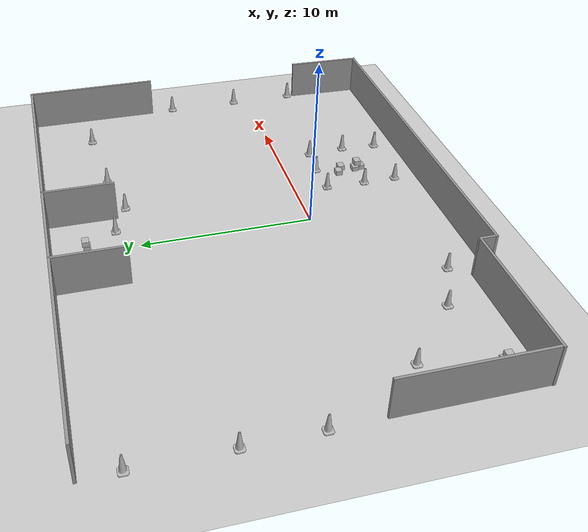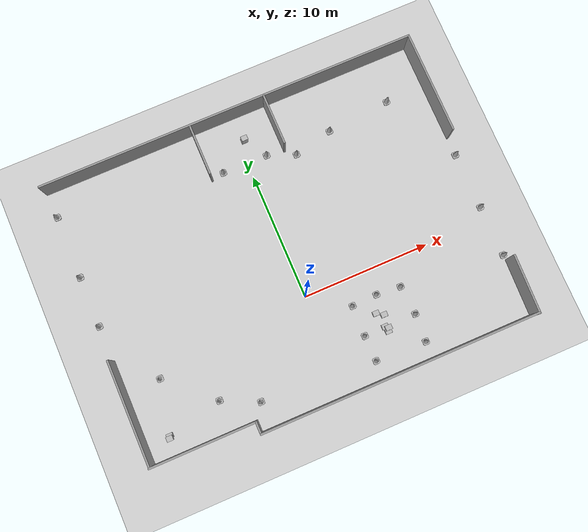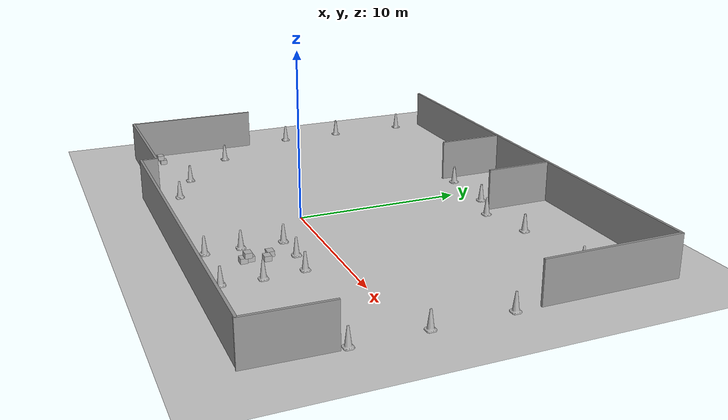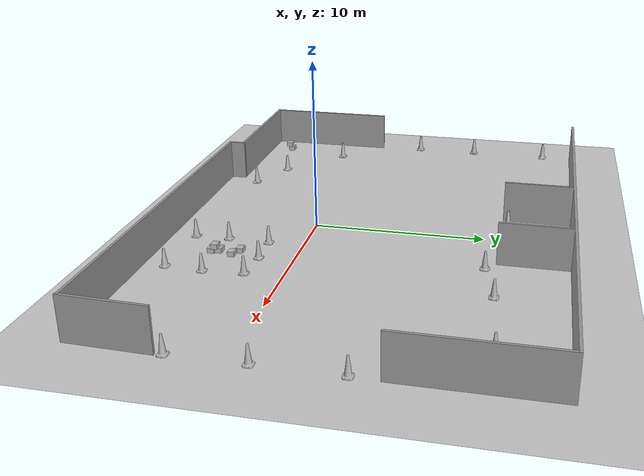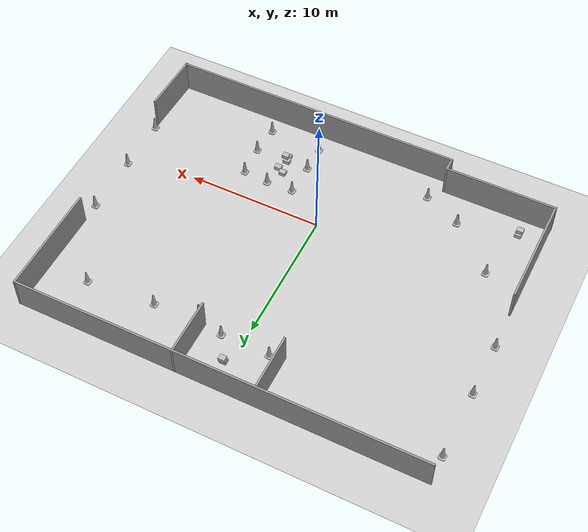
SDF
<sdf version="1.7">
 <world name="default">
  <light name="sun" type="directional">
   <pose>0 0 10 0 -0 0</pose>
   <diffuse>0.8 0.8 0.8 1</diffuse>
   <specular>0.2 0.2 0.2 1</specular>
   <attenuation>
    <range>1000</range>
    <constant>0.9</constant>
    <linear>0.01</linear>
    <quadratic>0.001</quadratic>
   </attenuation>
   <direction>-0.5 0.1 -0.9</direction>
   <spot><inner_angle>0</inner_angle><outer_angle>0</outer_angle><falloff>0</falloff></spot>
  </light>
  <model name="ground_plane">
   <static>1</static>
   <link name="link">
    <collision name="collision">
     <geometry><plane><normal>0 0 1</normal><size>100 100</size></plane></geometry>
     <surface>
      <contact><collide_bitmask>65535</collide_bitmask></contact>
      <friction><ode><mu>100</mu><mu2>50</mu2></ode></friction>
     </surface>
    </collision>
    <visual name="visual">
     <cast_shadows>0</cast_shadows>
     <geometry><plane><normal>0 0 1</normal><size>100 100</size></plane></geometry>
     <material>
      <script><uri>file://media/materials/scripts/gazebo.material</uri><name>Gazebo/Grey</name></script>
     </material>
    </visual>
   </link>
  </model>
  <physics type="ode">
   <real_time_update_rate>1000</real_time_update_rate>
   <max_step_size>0.001</max_step_size>
   <real_time_factor>1</real_time_factor>
   <ode>
    <solver>
     <type>quick</type>
     <iters>150</iters>
     <precon_iters>0</precon_iters>
     <sor>1.4</sor>
     <use_dynamic_moi_rescaling>1</use_dynamic_moi_rescaling>
    </solver>
    <constraints>
     <cfm>1e-05</cfm>
     <erp>0.2</erp>
     <contact_max_correcting_vel>2000</contact_max_correcting_vel>
     <contact_surface_layer>0.01</contact_surface_layer>
    </constraints>
   </ode>
  </physics>
  <scene><ambient>0.4 0.4 0.4 1</ambient><background>0.7 0.7 0.7 1</background><shadows>1</shadows></scene>
  <gravity>0 0 -9.8</gravity>
  <magnetic_field>6e-06 2.3e-05 -4.2e-05</magnetic_field>
  <atmosphere type="adiabatic"/>
  <spherical_coordinates>
   <surface_model>EARTH_WGS84</surface_model>
   <latitude_deg>0</latitude_deg>
   <longitude_deg>0</longitude_deg>
   <elevation>0</elevation>
   <heading_deg>0</heading_deg>
  </spherical_coordinates>
  <model name="Construction Cone_clone_clone_1_clone">
   <link name="link">
    <collision name="collision">
     <geometry>
      <mesh><scale>10 10 10</scale><uri>model://construction_cone/meshes/construction_cone.dae</uri></mesh>
     </geometry>
    </collision>
    <visual name="visual">
     <geometry>
      <mesh><scale>10 10 10</scale><uri>model://construction_cone/meshes/construction_cone.dae</uri></mesh>
     </geometry>
    </visual>
    <inertial>
     <inertia><ixx>1</ixx><ixy>0</ixy><ixz>0</ixz><iyy>1</iyy><iyz>0</iyz><izz>1</izz></inertia>
     <mass>1</mass>
    </inertial>
   </link>
   <pose>15.0025 5.5 -1e-06 5e-06 2e-06 0</pose>
  </model>
  <model name="Construction Cone_clone_clone_1_clone_1">
   <link name="link">
    <collision name="collision">
     <geometry>
      <mesh><scale>10 10 10</scale><uri>model://construction_cone/meshes/construction_cone.dae</uri></mesh>
     </geometry>
    </collision>
    <visual name="visual">
     <geometry>
      <mesh><scale>10 10 10</scale><uri>model://construction_cone/meshes/construction_cone.dae</uri></mesh>
     </geometry>
    </visual>
    <inertial>
     <inertia><ixx>1</ixx><ixy>0</ixy><ixz>0</ixz><iyy>1</iyy><iyz>0</iyz><izz>1</izz></inertia>
     <mass>1</mass>
    </inertial>
   </link>
   <pose>15.0143 1.02261 -0 0 -0 0</pose>
  </model>
  <model name="Construction Cone_clone_clone_1_clone_3">
   <link name="link">
    <collision name="collision">
     <geometry>
      <mesh><scale>10 10 10</scale><uri>model://construction_cone/meshes/construction_cone.dae</uri></mesh>
     </geometry>
    </collision>
    <visual name="visual">
     <geometry>
      <mesh><scale>10 10 10</scale><uri>model://construction_cone/meshes/construction_cone.dae</uri></mesh>
     </geometry>
    </visual>
    <inertial>
     <inertia><ixx>1</ixx><ixy>0</ixy><ixz>0</ixz><iyy>1</iyy><iyz>0</iyz><izz>1</izz></inertia>
     <mass>1</mass>
    </inertial>
   </link>
   <pose>15.0227 -3 -1e-06 5e-06 3e-06 -0</pose>
  </model>
  <model name="Construction Cone_clone_clone_1_clone_4">
   <link name="link">
    <collision name="collision">
     <geometry>
      <mesh><scale>10 10 10</scale><uri>model://construction_cone/meshes/construction_cone.dae</uri></mesh>
     </geometry>
    </collision>
    <visual name="visual">
     <geometry>
      <mesh><scale>10 10 10</scale><uri>model://construction_cone/meshes/construction_cone.dae</uri></mesh>
     </geometry>
    </visual>
    <inertial>
     <inertia><ixx>1</ixx><ixy>0</ixy><ixz>0</ixz><iyy>1</iyy><iyz>0</iyz><izz>1</izz></inertia>
     <mass>1</mass>
    </inertial>
   </link>
   <pose>1.5989 11.2212 -0 0 -0 0</pose>
  </model>
  <model name="Construction Cone_clone_clone_1_clone_5">
   <link name="link">
    <collision name="collision">
     <geometry>
      <mesh><scale>10 10 10</scale><uri>model://construction_cone/meshes/construction_cone.dae</uri></mesh>
     </geometry>
    </collision>
    <visual name="visual">
     <geometry>
      <mesh><scale>10 10 10</scale><uri>model://construction_cone/meshes/construction_cone.dae</uri></mesh>
     </geometry>
    </visual>
    <inertial>
     <inertia><ixx>1</ixx><ixy>0</ixy><ixz>0</ixz><iyy>1</iyy><iyz>0</iyz><izz>1</izz></inertia>
     <mass>1</mass>
    </inertial>
   </link>
   <pose>-2 11.2544 0 0 -0 0</pose>
  </model>
  <model name="Construction Cone_clone_clone_1_clone_6">
   <link name="link">
    <collision name="collision">
     <geometry>
      <mesh><scale>10 10 10</scale><uri>model://construction_cone/meshes/construction_cone.dae</uri></mesh>
     </geometry>
    </collision>
    <visual name="visual">
     <geometry>
      <mesh><scale>10 10 10</scale><uri>model://construction_cone/meshes/construction_cone.dae</uri></mesh>
     </geometry>
    </visual>
    <inertial>
     <inertia><ixx>1</ixx><ixy>0</ixy><ixz>0</ixz><iyy>1</iyy><iyz>0</iyz><izz>1</izz></inertia>
     <mass>1</mass>
    </inertial>
   </link>
   <pose>6.89163 -2.12915 0 0 -0 0</pose>
  </model>
  <model name="Construction Cone_clone_clone_1_clone_7">
   <link name="link">
    <collision name="collision">
     <geometry>
      <mesh><scale>10 10 10</scale><uri>model://construction_cone/meshes/construction_cone.dae</uri></mesh>
     </geometry>
    </collision>
    <visual name="visual">
     <geometry>
      <mesh><scale>10 10 10</scale><uri>model://construction_cone/meshes/construction_cone.dae</uri></mesh>
     </geometry>
    </visual>
    <inertial>
     <inertia><ixx>1</ixx><ixy>0</ixy><ixz>0</ixz><iyy>1</iyy><iyz>0</iyz><izz>1</izz></inertia>
     <mass>1</mass>
    </inertial>
   </link>
   <pose>2.98136 -2.03763 -0 0 -0 0</pose>
  </model>
  <model name="Construction Cone_clone_clone_1_clone_8">
   <link name="link">
    <collision name="collision">
     <geometry>
      <mesh><scale>10 10 10</scale><uri>model://construction_cone/meshes/construction_cone.dae</uri></mesh>
     </geometry>
    </collision>
    <visual name="visual">
     <geometry>
      <mesh><scale>10 10 10</scale><uri>model://construction_cone/meshes/construction_cone.dae</uri></mesh>
     </geometry>
    </visual>
    <inertial>
     <inertia><ixx>1</ixx><ixy>0</ixy><ixz>0</ixz><iyy>1</iyy><iyz>0</iyz><izz>1</izz></inertia>
     <mass>1</mass>
    </inertial>
   </link>
   <pose>7.05438 -4.42959 -1e-05 -1e-06 -1e-06 0</pose>
  </model>
  <model name="Construction Cone_clone_clone_1_clone_9">
   <link name="link">
    <collision name="collision">
     <geometry>
      <mesh><scale>10 10 10</scale><uri>model://construction_cone/meshes/construction_cone.dae</uri></mesh>
     </geometry>
    </collision>
    <visual name="visual">
     <geometry>
      <mesh><scale>10 10 10</scale><uri>model://construction_cone/meshes/construction_cone.dae</uri></mesh>
     </geometry>
    </visual>
    <inertial>
     <inertia><ixx>1</ixx><ixy>0</ixy><ixz>0</ixz><iyy>1</iyy><iyz>0</iyz><izz>1</izz></inertia>
     <mass>1</mass>
    </inertial>
   </link>
   <pose>6.92033 -6.61741 -8e-06 0 -1e-06 0</pose>
  </model>
  <model name="cardboard_box_clone_0_clone_0_clone">
   <pose>4.56362 -4.40522 0.148999 0 -0 0</pose>
   <link name="link">
    <inertial>
     <mass>2</mass>
     <inertia>
      <ixx>0.0416667</ixx>
      <ixy>0</ixy>
      <ixz>0</ixz>
      <iyy>0.0566667</iyy>
      <iyz>0</iyz>
      <izz>0.0683333</izz>
     </inertia>
    </inertial>
    <collision name="collision">
     <geometry><box><size>0.5 0.4 0.3</size></box></geometry>
     <surface>
      <friction><ode><mu>1</mu><mu2>1</mu2></ode></friction>
      <contact><ode><kp>1e+07</kp><kd>1</kd><min_depth>0.001</min_depth><max_vel>0.1</max_vel></ode></contact>
     </surface>
    </collision>
    <visual name="visual">
     <pose>0 0 -0.15 0 -0 0</pose>
     <geometry>
      <mesh><uri>model://cardboard_box/meshes/cardboard_box.dae</uri><scale>1.25932 1.00745 0.755591</scale></mesh>
     </geometry>
    </visual>
   </link>
  </model>
  <model name="cardboard_box_clone_0_clone_0_clone_0">
   <pose>4.6638 -4.8187 0.148999 0 -0 0</pose>
   <link name="link">
    <inertial>
     <mass>2</mass>
     <inertia>
      <ixx>0.0416667</ixx>
      <ixy>0</ixy>
      <ixz>0</ixz>
      <iyy>0.0566667</iyy>
      <iyz>0</iyz>
      <izz>0.0683333</izz>
     </inertia>
    </inertial>
    <collision name="collision">
     <geometry><box><size>0.5 0.4 0.3</size></box></geometry>
     <surface>
      <friction><ode><mu>1</mu><mu2>1</mu2></ode></friction>
      <contact><ode><kp>1e+07</kp><kd>1</kd><min_depth>0.001</min_depth><max_vel>0.1</max_vel></ode></contact>
     </surface>
    </collision>
    <visual name="visual">
     <pose>0 0 -0.15 0 -0 0</pose>
     <geometry>
      <mesh><uri>model://cardboard_box/meshes/cardboard_box.dae</uri><scale>1.25932 1.00745 0.755591</scale></mesh>
     </geometry>
    </visual>
   </link>
  </model>
  <model name="cardboard_box_clone_1_clone">
   <pose>4.7443 -4.5796 0.447999 0 -0 0</pose>
   <link name="link">
    <inertial>
     <mass>2</mass>
     <inertia>
      <ixx>0.0416667</ixx>
      <ixy>0</ixy>
      <ixz>0</ixz>
      <iyy>0.0566667</iyy>
      <iyz>0</iyz>
      <izz>0.0683333</izz>
     </inertia>
    </inertial>
    <collision name="collision">
     <geometry><box><size>0.5 0.4 0.3</size></box></geometry>
     <surface>
      <friction><ode><mu>1</mu><mu2>1</mu2></ode></friction>
      <contact><ode><kp>1e+07</kp><kd>1</kd><min_depth>0.001</min_depth><max_vel>0.1</max_vel></ode></contact>
     </surface>
    </collision>
    <visual name="visual">
     <pose>0 0 -0.15 0 -0 0</pose>
     <geometry>
      <mesh><uri>model://cardboard_box/meshes/cardboard_box.dae</uri><scale>1.25932 1.00745 0.755591</scale></mesh>
     </geometry>
    </visual>
   </link>
  </model>
  <model name="cardboard_box_clone_0_clone_0_clone_1">
   <pose>0.470633 12.971 0.148999 -1e-06 0 0</pose>
   <link name="link">
    <inertial>
     <mass>2</mass>
     <inertia>
      <ixx>0.0416667</ixx>
      <ixy>0</ixy>
      <ixz>0</ixz>
      <iyy>0.0566667</iyy>
      <iyz>0</iyz>
      <izz>0.0683333</izz>
     </inertia>
    </inertial>
    <collision name="collision">
     <geometry><box><size>0.5 0.4 0.3</size></box></geometry>
     <surface>
      <friction><ode><mu>1</mu><mu2>1</mu2></ode></friction>
      <contact><ode><kp>1e+07</kp><kd>1</kd><min_depth>0.001</min_depth><max_vel>0.1</max_vel></ode></contact>
     </surface>
    </collision>
    <visual name="visual">
     <pose>0 0 -0.15 0 -0 0</pose>
     <geometry>
      <mesh><uri>model://cardboard_box/meshes/cardboard_box.dae</uri><scale>1.25932 1.00745 0.755591</scale></mesh>
     </geometry>
    </visual>
   </link>
  </model>
  <model name="cardboard_box_clone_1_clone_0">
   <pose>0.518616 13.0279 0.447998 -2e-06 1e-06 -0</pose>
   <link name="link">
    <inertial>
     <mass>2</mass>
     <inertia>
      <ixx>0.0416667</ixx>
      <ixy>0</ixy>
      <ixz>0</ixz>
      <iyy>0.0566667</iyy>
      <iyz>0</iyz>
      <izz>0.0683333</izz>
     </inertia>
    </inertial>
    <collision name="collision">
     <geometry><box><size>0.5 0.4 0.3</size></box></geometry>
     <surface>
      <friction><ode><mu>1</mu><mu2>1</mu2></ode></friction>
      <contact><ode><kp>1e+07</kp><kd>1</kd><min_depth>0.001</min_depth><max_vel>0.1</max_vel></ode></contact>
     </surface>
    </collision>
    <visual name="visual">
     <pose>0 0 -0.15 0 -0 0</pose>
     <geometry>
      <mesh><uri>model://cardboard_box/meshes/cardboard_box.dae</uri><scale>1.25932 1.00745 0.755591</scale></mesh>
     </geometry>
    </visual>
   </link>
  </model>
  <model name="Construction Cone_clone_clone_1_clone_5_clone">
   <link name="link">
    <collision name="collision">
     <geometry>
      <mesh><scale>10 10 10</scale><uri>model://construction_cone/meshes/construction_cone.dae</uri></mesh>
     </geometry>
    </collision>
    <visual name="visual">
     <geometry>
      <mesh><scale>10 10 10</scale><uri>model://construction_cone/meshes/construction_cone.dae</uri></mesh>
     </geometry>
    </visual>
    <inertial>
     <inertia><ixx>1</ixx><ixy>0</ixy><ixz>0</ixz><iyy>1</iyy><iyz>0</iyz><izz>1</izz></inertia>
     <mass>1</mass>
    </inertial>
   </link>
   <pose>-14.9668 13 -0 0 -0 0</pose>
  </model>
  <model name="Construction Cone_clone_clone_1_clone_5_clone_3">
   <link name="link">
    <collision name="collision">
     <geometry>
      <mesh><scale>10 10 10</scale><uri>model://construction_cone/meshes/construction_cone.dae</uri></mesh>
     </geometry>
    </collision>
    <visual name="visual">
     <geometry>
      <mesh><scale>10 10 10</scale><uri>model://construction_cone/meshes/construction_cone.dae</uri></mesh>
     </geometry>
    </visual>
    <inertial>
     <inertia><ixx>1</ixx><ixy>0</ixy><ixz>0</ixz><iyy>1</iyy><iyz>0</iyz><izz>1</izz></inertia>
     <mass>1</mass>
    </inertial>
   </link>
   <pose>-15.0256 4 -0 0 -0 0</pose>
  </model>
  <model name="Construction Cone_clone_clone_1_clone_5_clone_8">
   <link name="link">
    <collision name="collision">
     <geometry>
      <mesh><scale>10 10 10</scale><uri>model://construction_cone/meshes/construction_cone.dae</uri></mesh>
     </geometry>
    </collision>
    <visual name="visual">
     <geometry>
      <mesh><scale>10 10 10</scale><uri>model://construction_cone/meshes/construction_cone.dae</uri></mesh>
     </geometry>
    </visual>
    <inertial>
     <inertia><ixx>1</ixx><ixy>0</ixy><ixz>0</ixz><iyy>1</iyy><iyz>0</iyz><izz>1</izz></inertia>
     <mass>1</mass>
    </inertial>
   </link>
   <pose>2.93725 -6.46774 0 0 -0 0</pose>
  </model>
  <model name="cardboard_box_clone_0_clone_0_clone_1_clone_1">
   <pose>4.86379 -3.56146 0.148999 -1e-06 0 0</pose>
   <link name="link">
    <inertial>
     <mass>2</mass>
     <inertia>
      <ixx>0.0416667</ixx>
      <ixy>0</ixy>
      <ixz>0</ixz>
      <iyy>0.0566667</iyy>
      <iyz>0</iyz>
      <izz>0.0683333</izz>
     </inertia>
    </inertial>
    <collision name="collision">
     <geometry><box><size>0.5 0.4 0.3</size></box></geometry>
     <surface>
      <friction><ode><mu>1</mu><mu2>1</mu2></ode></friction>
      <contact><ode><kp>1e+07</kp><kd>1</kd><min_depth>0.001</min_depth><max_vel>0.1</max_vel></ode></contact>
     </surface>
    </collision>
    <visual name="visual">
     <pose>0 0 -0.15 0 -0 0</pose>
     <geometry>
      <mesh><uri>model://cardboard_box/meshes/cardboard_box.dae</uri><scale>1.25932 1.00745 0.755591</scale></mesh>
     </geometry>
    </visual>
   </link>
  </model>
  <model name="cardboard_box_clone_0_clone_0_clone_1_clone_2">
   <pose>4.34352 -3.24324 0.148999 0 -0 3e-06</pose>
   <link name="link">
    <inertial>
     <mass>2</mass>
     <inertia>
      <ixx>0.0416667</ixx>
      <ixy>0</ixy>
      <ixz>0</ixz>
      <iyy>0.0566667</iyy>
      <iyz>0</iyz>
      <izz>0.0683333</izz>
     </inertia>
    </inertial>
    <collision name="collision">
     <geometry><box><size>0.5 0.4 0.3</size></box></geometry>
     <surface>
      <friction><ode><mu>1</mu><mu2>1</mu2></ode></friction>
      <contact><ode><kp>1e+07</kp><kd>1</kd><min_depth>0.001</min_depth><max_vel>0.1</max_vel></ode></contact>
     </surface>
    </collision>
    <visual name="visual">
     <pose>0 0 -0.15 0 -0 0</pose>
     <geometry>
      <mesh><uri>model://cardboard_box/meshes/cardboard_box.dae</uri><scale>1.25932 1.00745 0.755591</scale></mesh>
     </geometry>
    </visual>
   </link>
  </model>
  <model name="Construction Cone_clone_clone_1_clone_5_clone_0">
   <link name="link">
    <collision name="collision">
     <geometry>
      <mesh><scale>10 10 10</scale><uri>model://construction_cone/meshes/construction_cone.dae</uri></mesh>
     </geometry>
    </collision>
    <visual name="visual">
     <geometry>
      <mesh><scale>10 10 10</scale><uri>model://construction_cone/meshes/construction_cone.dae</uri></mesh>
     </geometry>
    </visual>
    <inertial>
     <inertia><ixx>1</ixx><ixy>0</ixy><ixz>0</ixz><iyy>1</iyy><iyz>0</iyz><izz>1</izz></inertia>
     <mass>1</mass>
    </inertial>
   </link>
   <pose>-15.0192 8 -8e-06 0 -1e-06 0</pose>
  </model>
  <model name="Construction Cone_clone_clone_1_clone_5_clone_3_clone_clone">
   <link name="link">
    <collision name="collision">
     <geometry>
      <mesh><scale>10 10 10</scale><uri>model://construction_cone/meshes/construction_cone.dae</uri></mesh>
     </geometry>
    </collision>
    <visual name="visual">
     <geometry>
      <mesh><scale>10 10 10</scale><uri>model://construction_cone/meshes/construction_cone.dae</uri></mesh>
     </geometry>
    </visual>
    <inertial>
     <inertia><ixx>1</ixx><ixy>0</ixy><ixz>0</ixz><iyy>1</iyy><iyz>0</iyz><izz>1</izz></inertia>
     <mass>1</mass>
    </inertial>
   </link>
   <pose>-12.2908 -1.36273 -9e-06 1e-06 1e-06 0</pose>
  </model>
  <model name="Construction Cone_clone_clone_1_clone_5_clone_3_clone_clone_0">
   <link name="link">
    <collision name="collision">
     <geometry>
      <mesh><scale>10 10 10</scale><uri>model://construction_cone/meshes/construction_cone.dae</uri></mesh>
     </geometry>
    </collision>
    <visual name="visual">
     <geometry>
      <mesh><scale>10 10 10</scale><uri>model://construction_cone/meshes/construction_cone.dae</uri></mesh>
     </geometry>
    </visual>
    <inertial>
     <inertia><ixx>1</ixx><ixy>0</ixy><ixz>0</ixz><iyy>1</iyy><iyz>0</iyz><izz>1</izz></inertia>
     <mass>1</mass>
    </inertial>
   </link>
   <pose>-8.85848 -4.56522 1e-06 0 4e-06 0</pose>
  </model>
  <model name="cardboard_box_clone_0_clone_0_clone_1_clone_3">
   <pose>-13.1496 -5.48819 0.148999 2e-06 -0 0</pose>
   <link name="link">
    <inertial>
     <mass>2</mass>
     <inertia>
      <ixx>0.0416667</ixx>
      <ixy>0</ixy>
      <ixz>0</ixz>
      <iyy>0.0566667</iyy>
      <iyz>0</iyz>
      <izz>0.0683333</izz>
     </inertia>
    </inertial>
    <collision name="collision">
     <geometry><box><size>0.5 0.4 0.3</size></box></geometry>
     <surface>
      <friction><ode><mu>1</mu><mu2>1</mu2></ode></friction>
      <contact><ode><kp>1e+07</kp><kd>1</kd><min_depth>0.001</min_depth><max_vel>0.1</max_vel></ode></contact>
     </surface>
    </collision>
    <visual name="visual">
     <pose>0 0 -0.15 0 -0 0</pose>
     <geometry>
      <mesh><uri>model://cardboard_box/meshes/cardboard_box.dae</uri><scale>1.25932 1.00745 0.755591</scale></mesh>
     </geometry>
    </visual>
   </link>
  </model>
  <model name="cardboard_box_clone_1_clone_0_clone">
   <pose>-13.1853 -5.65432 0.447997 8e-06 -1e-06 -0</pose>
   <link name="link">
    <inertial>
     <mass>2</mass>
     <inertia>
      <ixx>0.0416667</ixx>
      <ixy>0</ixy>
      <ixz>0</ixz>
      <iyy>0.0566667</iyy>
      <iyz>0</iyz>
      <izz>0.0683333</izz>
     </inertia>
    </inertial>
    <collision name="collision">
     <geometry><box><size>0.5 0.4 0.3</size></box></geometry>
     <surface>
      <friction><ode><mu>1</mu><mu2>1</mu2></ode></friction>
      <contact><ode><kp>1e+07</kp><kd>1</kd><min_depth>0.001</min_depth><max_vel>0.1</max_vel></ode></contact>
     </surface>
    </collision>
    <visual name="visual">
     <pose>0 0 -0.15 0 -0 0</pose>
     <geometry>
      <mesh><uri>model://cardboard_box/meshes/cardboard_box.dae</uri><scale>1.25932 1.00745 0.755591</scale></mesh>
     </geometry>
    </visual>
   </link>
  </model>
  <model name="Construction Cone_clone_clone_1_clone_7_clone">
   <link name="link">
    <collision name="collision">
     <geometry>
      <mesh><scale>10 10 10</scale><uri>model://construction_cone/meshes/construction_cone.dae</uri></mesh>
     </geometry>
    </collision>
    <visual name="visual">
     <geometry>
      <mesh><scale>10 10 10</scale><uri>model://construction_cone/meshes/construction_cone.dae</uri></mesh>
     </geometry>
    </visual>
    <inertial>
     <inertia><ixx>1</ixx><ixy>0</ixy><ixz>0</ixz><iyy>1</iyy><iyz>0</iyz><izz>1</izz></inertia>
     <mass>1</mass>
    </inertial>
   </link>
   <pose>3.7562 10.3741 0 0 -0 0</pose>
  </model>
  <model name="Construction Cone_clone_clone_1_clone_7_clone_clone">
   <link name="link">
    <collision name="collision">
     <geometry>
      <mesh><scale>10 10 10</scale><uri>model://construction_cone/meshes/construction_cone.dae</uri></mesh>
     </geometry>
    </collision>
    <visual name="visual">
     <geometry>
      <mesh><scale>10 10 10</scale><uri>model://construction_cone/meshes/construction_cone.dae</uri></mesh>
     </geometry>
    </visual>
    <inertial>
     <inertia><ixx>1</ixx><ixy>0</ixy><ixz>0</ixz><iyy>1</iyy><iyz>0</iyz><izz>1</izz></inertia>
     <mass>1</mass>
    </inertial>
   </link>
   <pose>6.83638 11.0808 0 0 -0 0</pose>
  </model>
  <model name="Construction Cone_clone_clone_1_clone_7_clone_clone_0">
   <link name="link">
    <collision name="collision">
     <geometry>
      <mesh><scale>10 10 10</scale><uri>model://construction_cone/meshes/construction_cone.dae</uri></mesh>
     </geometry>
    </collision>
    <visual name="visual">
     <geometry>
      <mesh><scale>10 10 10</scale><uri>model://construction_cone/meshes/construction_cone.dae</uri></mesh>
     </geometry>
    </visual>
    <inertial>
     <inertia><ixx>1</ixx><ixy>0</ixy><ixz>0</ixz><iyy>1</iyy><iyz>0</iyz><izz>1</izz></inertia>
     <mass>1</mass>
    </inertial>
   </link>
   <pose>11.8829 11.5004 0 0 -0 0</pose>
  </model>
  <model name="Untitled_0">
   <link name="Wall_1">
    <pose>0 15 0 0 -0 3.14159</pose>
    <visual name="Wall_1_Visual">
     <pose>0 0 1.25 0 -0 0</pose>
     <geometry><box><size>30.15 0.15 2.5</size></box></geometry>
     <material>
      <script><uri>file://media/materials/scripts/gazebo.material</uri><name>Gazebo/Grey</name></script>
      <ambient>1 1 1 1</ambient>
      <shader type="pixel"/>
     </material>
     <meta><layer>0</layer></meta>
    </visual>
    <collision name="Wall_1_Collision">
     <pose>0 0 1.25 0 -0 0</pose>
     <geometry><box><size>30.15 0.15 2.5</size></box></geometry>
     <surface>
      <friction>
       <ode><mu>1</mu><mu2>1</mu2><fdir1>0 0 0</fdir1><slip1>0</slip1><slip2>0</slip2></ode>
       <torsional>
        <coefficient>1</coefficient>
        <patch_radius>0</patch_radius>
        <surface_radius>0</surface_radius>
        <use_patch_radius>1</use_patch_radius>
        <ode><slip>0</slip></ode>
       </torsional>
      </friction>
      <bounce><restitution_coefficient>0</restitution_coefficient><threshold>1e+06</threshold></bounce>
      <contact>
       <collide_without_contact>0</collide_without_contact>
       <collide_without_contact_bitmask>1</collide_without_contact_bitmask>
       <collide_bitmask>1</collide_bitmask>
       <ode>
        <soft_cfm>0</soft_cfm>
        <soft_erp>0.2</soft_erp>
        <kp>1e+13</kp>
        <kd>1</kd>
        <max_vel>0.01</max_vel>
        <min_depth>0</min_depth>
       </ode>
       <bullet>
        <split_impulse>1</split_impulse>
        <split_impulse_penetration_threshold>-0.01</split_impulse_penetration_threshold>
        <soft_cfm>0</soft_cfm>
        <soft_erp>0.2</soft_erp>
        <kp>1e+13</kp>
        <kd>1</kd>
       </bullet>
      </contact>
     </surface>
    </collision>
   </link>
   <link name="Wall_16">
    <pose>15 11 0 0 0 -1.5708</pose>
    <visual name="Wall_16_Visual">
     <pose>0 0 1.25 0 -0 0</pose>
     <geometry><box><size>8.15 0.15 2.5</size></box></geometry>
     <material>
      <script><uri>file://media/materials/scripts/gazebo.material</uri><name>Gazebo/Grey</name></script>
      <ambient>1 1 1 1</ambient>
      <shader type="pixel"/>
     </material>
     <meta><layer>0</layer></meta>
    </visual>
    <collision name="Wall_16_Collision">
     <pose>0 0 1.25 0 -0 0</pose>
     <geometry><box><size>8.15 0.15 2.5</size></box></geometry>
     <surface>
      <friction>
       <ode><mu>1</mu><mu2>1</mu2><fdir1>0 0 0</fdir1><slip1>0</slip1><slip2>0</slip2></ode>
       <torsional>
        <coefficient>1</coefficient>
        <patch_radius>0</patch_radius>
        <surface_radius>0</surface_radius>
        <use_patch_radius>1</use_patch_radius>
        <ode><slip>0</slip></ode>
       </torsional>
      </friction>
      <bounce><restitution_coefficient>0</restitution_coefficient><threshold>1e+06</threshold></bounce>
      <contact>
       <collide_without_contact>0</collide_without_contact>
       <collide_without_contact_bitmask>1</collide_without_contact_bitmask>
       <collide_bitmask>1</collide_bitmask>
       <ode>
        <soft_cfm>0</soft_cfm>
        <soft_erp>0.2</soft_erp>
        <kp>1e+13</kp>
        <kd>1</kd>
        <max_vel>0.01</max_vel>
        <min_depth>0</min_depth>
       </ode>
       <bullet>
        <split_impulse>1</split_impulse>
        <split_impulse_penetration_threshold>-0.01</split_impulse_penetration_threshold>
        <soft_cfm>0</soft_cfm>
        <soft_erp>0.2</soft_erp>
        <kp>1e+13</kp>
        <kd>1</kd>
       </bullet>
      </contact>
     </surface>
    </collision>
   </link>
   <link name="Wall_20">
    <pose>-11 -7 0 0 -0 0</pose>
    <visual name="Wall_20_Visual">
     <pose>0 0 1.25 0 -0 0</pose>
     <geometry><box><size>8.15 0.15 2.5</size></box></geometry>
     <material>
      <script><uri>file://media/materials/scripts/gazebo.material</uri><name>Gazebo/Grey</name></script>
      <ambient>1 1 1 1</ambient>
      <shader type="pixel"/>
     </material>
     <meta><layer>0</layer></meta>
    </visual>
    <collision name="Wall_20_Collision">
     <pose>0 0 1.25 0 -0 0</pose>
     <geometry><box><size>8.15 0.15 2.5</size></box></geometry>
     <surface>
      <friction>
       <ode><mu>1</mu><mu2>1</mu2><fdir1>0 0 0</fdir1><slip1>0</slip1><slip2>0</slip2></ode>
       <torsional>
        <coefficient>1</coefficient>
        <patch_radius>0</patch_radius>
        <surface_radius>0</surface_radius>
        <use_patch_radius>1</use_patch_radius>
        <ode><slip>0</slip></ode>
       </torsional>
      </friction>
      <bounce><restitution_coefficient>0</restitution_coefficient><threshold>1e+06</threshold></bounce>
      <contact>
       <collide_without_contact>0</collide_without_contact>
       <collide_without_contact_bitmask>1</collide_without_contact_bitmask>
       <collide_bitmask>1</collide_bitmask>
       <ode>
        <soft_cfm>0</soft_cfm>
        <soft_erp>0.2</soft_erp>
        <kp>1e+13</kp>
        <kd>1</kd>
        <max_vel>0.01</max_vel>
        <min_depth>0</min_depth>
       </ode>
       <bullet>
        <split_impulse>1</split_impulse>
        <split_impulse_penetration_threshold>-0.01</split_impulse_penetration_threshold>
        <soft_cfm>0</soft_cfm>
        <soft_erp>0.2</soft_erp>
        <kp>1e+13</kp>
        <kd>1</kd>
       </bullet>
      </contact>
     </surface>
    </collision>
   </link>
   <link name="Wall_20_clone">
    <pose>4.02355 -7.93118 0 0 -0 0</pose>
    <inertial>
     <inertia><ixx>0</ixx><ixy>0</ixy><ixz>0</ixz><iyy>0</iyy><iyz>0</iyz><izz>0</izz></inertia>
     <mass>0</mass>
    </inertial>
    <visual name="Wall_20_Visual">
     <pose>0 0 1.25 0 -0 0</pose>
     <geometry><box><size>21.9402 0.15 2.5</size></box></geometry>
     <material>
      <script><uri>file://media/materials/scripts/gazebo.material</uri><name>Gazebo/Grey</name></script>
      <ambient>1 1 1 1</ambient>
      <shader type="pixel"/>
     </material>
     <meta><layer>0</layer></meta>
    </visual>
    <collision name="Wall_20_Collision">
     <pose>0 0 1.25 0 -0 0</pose>
     <geometry><box><size>21.9402 0.15 2.5</size></box></geometry>
     <surface>
      <friction>
       <ode><mu>1</mu><mu2>1</mu2><fdir1>0 0 0</fdir1><slip1>0</slip1><slip2>0</slip2></ode>
       <torsional>
        <coefficient>1</coefficient>
        <patch_radius>0</patch_radius>
        <surface_radius>0</surface_radius>
        <use_patch_radius>1</use_patch_radius>
        <ode><slip>0</slip></ode>
       </torsional>
      </friction>
      <bounce><restitution_coefficient>0</restitution_coefficient><threshold>1e+06</threshold></bounce>
      <contact>
       <collide_without_contact>0</collide_without_contact>
       <collide_without_contact_bitmask>1</collide_without_contact_bitmask>
       <collide_bitmask>1</collide_bitmask>
       <ode>
        <soft_cfm>0</soft_cfm>
        <soft_erp>0.2</soft_erp>
        <kp>1e+13</kp>
        <kd>1</kd>
        <max_vel>0.01</max_vel>
        <min_depth>0</min_depth>
       </ode>
       <bullet>
        <split_impulse>1</split_impulse>
        <split_impulse_penetration_threshold>-0.01</split_impulse_penetration_threshold>
        <soft_cfm>0</soft_cfm>
        <soft_erp>0.2</soft_erp>
        <kp>1e+13</kp>
        <kd>1</kd>
       </bullet>
      </contact>
     </surface>
    </collision>
   </link>
   <link name="Wall_20_clone_clone">
    <pose>15.0106 -5.71288 0 0 -0 1.54029</pose>
    <inertial>
     <inertia><ixx>0</ixx><ixy>0</ixy><ixz>0</ixz><iyy>0</iyy><iyz>0</iyz><izz>0</izz></inertia>
     <mass>0</mass>
    </inertial>
    <visual name="Wall_20_Visual">
     <pose>0 0 1.25 0 -0 0</pose>
     <geometry><box><size>4.66055 0.15 2.5</size></box></geometry>
     <material>
      <script><uri>file://media/materials/scripts/gazebo.material</uri><name>Gazebo/Grey</name></script>
      <ambient>1 1 1 1</ambient>
      <shader type="pixel"/>
     </material>
     <meta><layer>0</layer></meta>
    </visual>
    <collision name="Wall_20_Collision">
     <pose>0 0 1.25 0 -0 0</pose>
     <geometry><box><size>4.66055 0.15 2.5</size></box></geometry>
     <surface>
      <friction>
       <ode><mu>1</mu><mu2>1</mu2><fdir1>0 0 0</fdir1><slip1>0</slip1><slip2>0</slip2></ode>
       <torsional>
        <coefficient>1</coefficient>
        <patch_radius>0</patch_radius>
        <surface_radius>0</surface_radius>
        <use_patch_radius>1</use_patch_radius>
        <ode><slip>0</slip></ode>
       </torsional>
      </friction>
      <bounce><restitution_coefficient>0</restitution_coefficient><threshold>1e+06</threshold></bounce>
      <contact>
       <collide_without_contact>0</collide_without_contact>
       <collide_without_contact_bitmask>1</collide_without_contact_bitmask>
       <collide_bitmask>1</collide_bitmask>
       <ode>
        <soft_cfm>0</soft_cfm>
        <soft_erp>0.2</soft_erp>
        <kp>1e+13</kp>
        <kd>1</kd>
        <max_vel>0.01</max_vel>
        <min_depth>0</min_depth>
       </ode>
       <bullet>
        <split_impulse>1</split_impulse>
        <split_impulse_penetration_threshold>-0.01</split_impulse_penetration_threshold>
        <soft_cfm>0</soft_cfm>
        <soft_erp>0.2</soft_erp>
        <kp>1e+13</kp>
        <kd>1</kd>
       </bullet>
      </contact>
     </surface>
    </collision>
   </link>
   <link name="Wall_21_clone">
    <pose>-14.969 -2.88532 0 0 0 -1.5708</pose>
    <visual name="Wall_21_Visual">
     <pose>0 0 1.25 0 -0 0</pose>
     <geometry><box><size>8.15 0.15 2.5</size></box></geometry>
     <material>
      <script><uri>file://media/materials/scripts/gazebo.material</uri><name>Gazebo/Grey</name></script>
      <ambient>1 1 1 1</ambient>
      <shader type="pixel"/>
     </material>
     <meta><layer>0</layer></meta>
    </visual>
    <collision name="Wall_21_Collision">
     <pose>0 0 1.25 0 -0 0</pose>
     <geometry><box><size>8.15 0.15 2.5</size></box></geometry>
     <surface>
      <friction>
       <ode><mu>1</mu><mu2>1</mu2><fdir1>0 0 0</fdir1><slip1>0</slip1><slip2>0</slip2></ode>
       <torsional>
        <coefficient>1</coefficient>
        <patch_radius>0</patch_radius>
        <surface_radius>0</surface_radius>
        <use_patch_radius>1</use_patch_radius>
        <ode><slip>0</slip></ode>
       </torsional>
      </friction>
      <bounce><restitution_coefficient>0</restitution_coefficient><threshold>1e+06</threshold></bounce>
      <contact>
       <collide_without_contact>0</collide_without_contact>
       <collide_without_contact_bitmask>1</collide_without_contact_bitmask>
       <collide_bitmask>1</collide_bitmask>
       <ode>
        <soft_cfm>0</soft_cfm>
        <soft_erp>0.2</soft_erp>
        <kp>1e+13</kp>
        <kd>1</kd>
        <max_vel>0.01</max_vel>
        <min_depth>0</min_depth>
       </ode>
       <bullet>
        <split_impulse>1</split_impulse>
        <split_impulse_penetration_threshold>-0.01</split_impulse_penetration_threshold>
        <soft_cfm>0</soft_cfm>
        <soft_erp>0.2</soft_erp>
        <kp>1e+13</kp>
        <kd>1</kd>
       </bullet>
      </contact>
     </surface>
    </collision>
   </link>
   <link name="Wall_21_clone_clone_0">
    <pose>-6.87491 -7.38822 0 0 0 -1.5708</pose>
    <inertial>
     <inertia><ixx>0</ixx><ixy>0</ixy><ixz>0</ixz><iyy>0</iyy><iyz>0</iyz><izz>0</izz></inertia>
     <mass>0</mass>
    </inertial>
    <visual name="Wall_21_Visual">
     <pose>0 0 1.25 0 -0 0</pose>
     <geometry><box><size>0.941119 0.15 2.5</size></box></geometry>
     <material>
      <script><uri>file://media/materials/scripts/gazebo.material</uri><name>Gazebo/Grey</name></script>
      <ambient>1 1 1 1</ambient>
      <shader type="pixel"/>
     </material>
     <meta><layer>0</layer></meta>
    </visual>
    <collision name="Wall_21_Collision">
     <pose>0 0 1.25 0 -0 0</pose>
     <geometry><box><size>0.941119 0.15 2.5</size></box></geometry>
     <surface>
      <friction>
       <ode><mu>1</mu><mu2>1</mu2><fdir1>0 0 0</fdir1><slip1>0</slip1><slip2>0</slip2></ode>
       <torsional>
        <coefficient>1</coefficient>
        <patch_radius>0</patch_radius>
        <surface_radius>0</surface_radius>
        <use_patch_radius>1</use_patch_radius>
        <ode><slip>0</slip></ode>
       </torsional>
      </friction>
      <bounce><restitution_coefficient>0</restitution_coefficient><threshold>1e+06</threshold></bounce>
      <contact>
       <collide_without_contact>0</collide_without_contact>
       <collide_without_contact_bitmask>1</collide_without_contact_bitmask>
       <collide_bitmask>1</collide_bitmask>
       <ode>
        <soft_cfm>0</soft_cfm>
        <soft_erp>0.2</soft_erp>
        <kp>1e+13</kp>
        <kd>1</kd>
        <max_vel>0.01</max_vel>
        <min_depth>0</min_depth>
       </ode>
       <bullet>
        <split_impulse>1</split_impulse>
        <split_impulse_penetration_threshold>-0.01</split_impulse_penetration_threshold>
        <soft_cfm>0</soft_cfm>
        <soft_erp>0.2</soft_erp>
        <kp>1e+13</kp>
        <kd>1</kd>
       </bullet>
      </contact>
     </surface>
    </collision>
   </link>
   <link name="Wall_23">
    <pose>-3 13 0 0 0 -1.5708</pose>
    <visual name="Wall_23_Visual">
     <pose>0 0 1.25 0 -0 0</pose>
     <geometry><box><size>4.15 0.15 2.5</size></box></geometry>
     <material>
      <script><uri>file://media/materials/scripts/gazebo.material</uri><name>Gazebo/Grey</name></script>
      <ambient>1 1 1 1</ambient>
      <shader type="pixel"/>
     </material>
     <meta><layer>0</layer></meta>
    </visual>
    <collision name="Wall_23_Collision">
     <pose>0 0 1.25 0 -0 0</pose>
     <geometry><box><size>4.15 0.15 2.5</size></box></geometry>
     <surface>
      <friction>
       <ode><mu>1</mu><mu2>1</mu2><fdir1>0 0 0</fdir1><slip1>0</slip1><slip2>0</slip2></ode>
       <torsional>
        <coefficient>1</coefficient>
        <patch_radius>0</patch_radius>
        <surface_radius>0</surface_radius>
        <use_patch_radius>1</use_patch_radius>
        <ode><slip>0</slip></ode>
       </torsional>
      </friction>
      <bounce><restitution_coefficient>0</restitution_coefficient><threshold>1e+06</threshold></bounce>
      <contact>
       <collide_without_contact>0</collide_without_contact>
       <collide_without_contact_bitmask>1</collide_without_contact_bitmask>
       <collide_bitmask>1</collide_bitmask>
       <ode>
        <soft_cfm>0</soft_cfm>
        <soft_erp>0.2</soft_erp>
        <kp>1e+13</kp>
        <kd>1</kd>
        <max_vel>0.01</max_vel>
        <min_depth>0</min_depth>
       </ode>
       <bullet>
        <split_impulse>1</split_impulse>
        <split_impulse_penetration_threshold>-0.01</split_impulse_penetration_threshold>
        <soft_cfm>0</soft_cfm>
        <soft_erp>0.2</soft_erp>
        <kp>1e+13</kp>
        <kd>1</kd>
       </bullet>
      </contact>
     </surface>
    </collision>
   </link>
   <link name="Wall_25">
    <pose>3 13 0 0 0 -1.5708</pose>
    <visual name="Wall_25_Visual">
     <pose>0 0 1.25 0 -0 0</pose>
     <geometry><box><size>4.15 0.15 2.5</size></box></geometry>
     <material>
      <script><uri>file://media/materials/scripts/gazebo.material</uri><name>Gazebo/Grey</name></script>
      <ambient>1 1 1 1</ambient>
      <shader type="pixel"/>
     </material>
     <meta><layer>0</layer></meta>
    </visual>
    <collision name="Wall_25_Collision">
     <pose>0 0 1.25 0 -0 0</pose>
     <geometry><box><size>4.15 0.15 2.5</size></box></geometry>
     <surface>
      <friction>
       <ode><mu>1</mu><mu2>1</mu2><fdir1>0 0 0</fdir1><slip1>0</slip1><slip2>0</slip2></ode>
       <torsional>
        <coefficient>1</coefficient>
        <patch_radius>0</patch_radius>
        <surface_radius>0</surface_radius>
        <use_patch_radius>1</use_patch_radius>
        <ode><slip>0</slip></ode>
       </torsional>
      </friction>
      <bounce><restitution_coefficient>0</restitution_coefficient><threshold>1e+06</threshold></bounce>
      <contact>
       <collide_without_contact>0</collide_without_contact>
       <collide_without_contact_bitmask>1</collide_without_contact_bitmask>
       <collide_bitmask>1</collide_bitmask>
       <ode>
        <soft_cfm>0</soft_cfm>
        <soft_erp>0.2</soft_erp>
        <kp>1e+13</kp>
        <kd>1</kd>
        <max_vel>0.01</max_vel>
        <min_depth>0</min_depth>
       </ode>
       <bullet>
        <split_impulse>1</split_impulse>
        <split_impulse_penetration_threshold>-0.01</split_impulse_penetration_threshold>
        <soft_cfm>0</soft_cfm>
        <soft_erp>0.2</soft_erp>
        <kp>1e+13</kp>
        <kd>1</kd>
       </bullet>
      </contact>
     </surface>
    </collision>
   </link>
   <static>1</static>
  </model>
  <model name="Construction Cone_clone_clone_1_clone_8_clone">
   <link name="link">
    <collision name="collision">
     <geometry>
      <mesh><scale>10 10 10</scale><uri>model://construction_cone/meshes/construction_cone.dae</uri></mesh>
     </geometry>
    </collision>
    <visual name="visual">
     <geometry>
      <mesh><scale>10 10 10</scale><uri>model://construction_cone/meshes/construction_cone.dae</uri></mesh>
     </geometry>
    </visual>
    <inertial>
     <inertia><ixx>1</ixx><ixy>0</ixy><ixz>0</ixz><iyy>1</iyy><iyz>0</iyz><izz>1</izz></inertia>
     <mass>1</mass>
    </inertial>
   </link>
   <pose>2.91116 -4.44985 -1e-05 -1e-06 -1e-06 0</pose>
  </model>
  <model name="Construction Cone_clone_clone_1_clone_8_clone_0">
   <link name="link">
    <collision name="collision">
     <geometry>
      <mesh><scale>10 10 10</scale><uri>model://construction_cone/meshes/construction_cone.dae</uri></mesh>
     </geometry>
    </collision>
    <visual name="visual">
     <geometry>
      <mesh><scale>10 10 10</scale><uri>model://construction_cone/meshes/construction_cone.dae</uri></mesh>
     </geometry>
    </visual>
    <inertial>
     <inertia><ixx>1</ixx><ixy>0</ixy><ixz>0</ixz><iyy>1</iyy><iyz>0</iyz><izz>1</izz></inertia>
     <mass>1</mass>
    </inertial>
   </link>
   <pose>4.97047 -1.96141 -1e-05 -1e-06 -1e-06 0</pose>
  </model>
  <model name="Construction Cone_clone_clone_1_clone_5_clone_3_clone_clone_0_clone">
   <link name="link">
    <collision name="collision">
     <geometry>
      <mesh><scale>10 10 10</scale><uri>model://construction_cone/meshes/construction_cone.dae</uri></mesh>
     </geometry>
    </collision>
    <visual name="visual">
     <geometry>
      <mesh><scale>10 10 10</scale><uri>model://construction_cone/meshes/construction_cone.dae</uri></mesh>
     </geometry>
    </visual>
    <inertial>
     <inertia><ixx>1</ixx><ixy>0</ixy><ixz>0</ixz><iyy>1</iyy><iyz>0</iyz><izz>1</izz></inertia>
     <mass>1</mass>
    </inertial>
   </link>
   <pose>-6.07626 -5.85445 -3e-06 -2e-06 -3e-06 0</pose>
  </model>
 </world>
</sdf>
